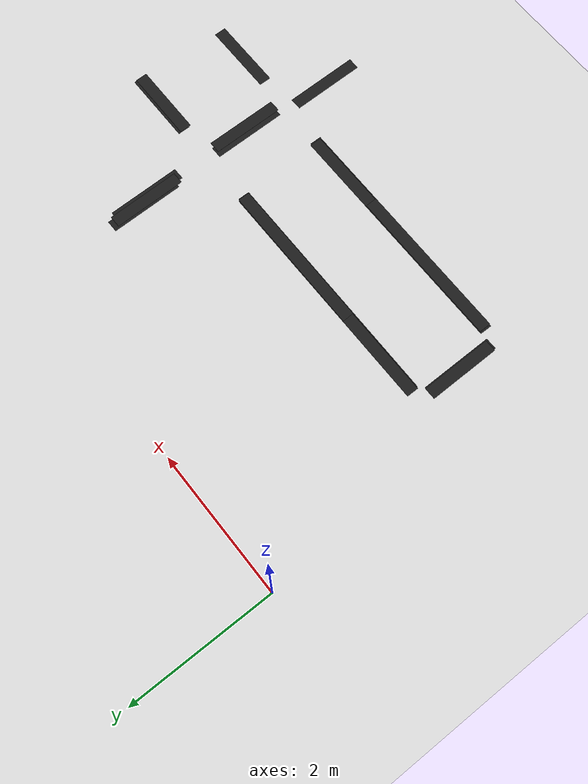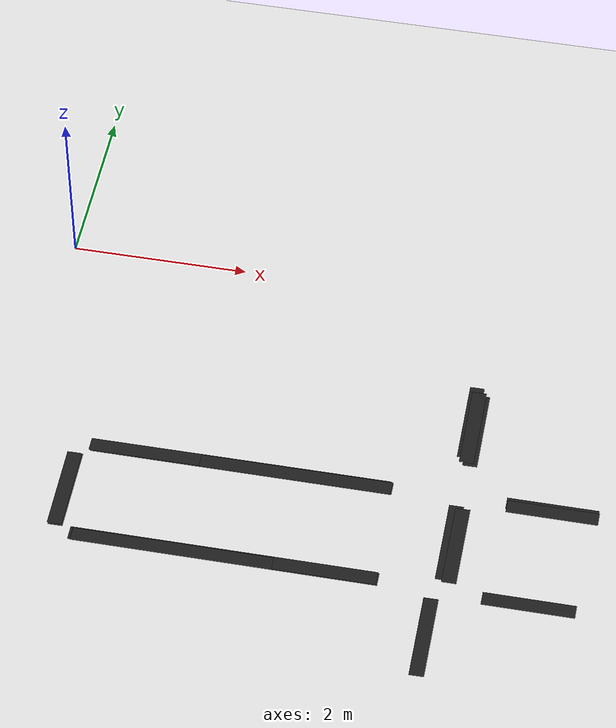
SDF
<sdf version="1.7">
 <world name="default">
  <model name="ground_plane">
   <static>1</static>
   <link name="link">
    <collision name="collision">
     <geometry><plane><normal>0 0 1</normal><size>100 100</size></plane></geometry>
     <surface>
      <contact><collide_bitmask>65535</collide_bitmask></contact>
      <friction><ode><mu>100</mu><mu2>50</mu2></ode></friction>
     </surface>
    </collision>
    <visual name="visual">
     <cast_shadows>0</cast_shadows>
     <geometry><plane><normal>0 0 1</normal><size>100 100</size></plane></geometry>
     <material>
      <script><uri>file://media/materials/scripts/gazebo.material</uri><name>Gazebo/White</name></script>
     </material>
    </visual>
   </link>
  </model>
  <model name="unit_box_clone_0_clone_clone_0_clone_clone">
   <link name="link">
    <inertial>
     <mass>1</mass>
     <inertia>
      <ixx>0.166667</ixx>
      <ixy>0</ixy>
      <ixz>0</ixz>
      <iyy>0.166667</iyy>
      <iyz>0</iyz>
      <izz>0.166667</izz>
     </inertia>
    </inertial>
    <visual name="visual">
     <geometry><box><size>0.983697 0.160776 0.000937</size></box></geometry>
     <material>
      <script><name>Gazebo/Black</name><uri>file://media/materials/scripts/gazebo.material</uri></script>
      <shader type="pixel"><normal_map>__default__</normal_map></shader>
      <ambient>0 0 0 1</ambient>
      <diffuse>0 0 0 1</diffuse>
      <specular>0.1 0.1 0.1 1</specular>
      <emissive>0 0 0 1</emissive>
     </material>
    </visual>
    <collision name="collision">
     <geometry><box><size>0.983697 0.160776 0.000937</size></box></geometry>
     <surface>
      <friction>
       <ode><mu>1</mu><mu2>1</mu2><fdir1>0 0 0</fdir1><slip1>0</slip1><slip2>0</slip2></ode>
       <torsional>
        <coefficient>1</coefficient>
        <patch_radius>0</patch_radius>
        <surface_radius>0</surface_radius>
        <use_patch_radius>1</use_patch_radius>
        <ode><slip>0</slip></ode>
       </torsional>
      </friction>
      <bounce><restitution_coefficient>0</restitution_coefficient><threshold>1e+06</threshold></bounce>
      <contact>
       <collide_without_contact>0</collide_without_contact>
       <collide_without_contact_bitmask>1</collide_without_contact_bitmask>
       <collide_bitmask>1</collide_bitmask>
       <ode>
        <soft_cfm>0</soft_cfm>
        <soft_erp>0.2</soft_erp>
        <kp>1e+13</kp>
        <kd>1</kd>
        <max_vel>0.01</max_vel>
        <min_depth>0</min_depth>
       </ode>
       <bullet>
        <split_impulse>1</split_impulse>
        <split_impulse_penetration_threshold>-0.01</split_impulse_penetration_threshold>
        <soft_cfm>0</soft_cfm>
        <soft_erp>0.2</soft_erp>
        <kp>1e+13</kp>
        <kd>1</kd>
       </bullet>
      </contact>
     </surface>
    </collision>
   </link>
   <static>0</static>
   <pose>0.692916 -3.42492 0.001253 -2e-06 4.4e-05 -1.56183</pose>
  </model>
  <model name="unit_box_clone_0_clone_clone_0_clone_clone_clone">
   <link name="link">
    <inertial>
     <mass>1</mass>
     <inertia>
      <ixx>0.166667</ixx>
      <ixy>0</ixy>
      <ixz>0</ixz>
      <iyy>0.166667</iyy>
      <iyz>0</iyz>
      <izz>0.166667</izz>
     </inertia>
    </inertial>
    <visual name="visual">
     <geometry><box><size>1 0.160776 0.000937</size></box></geometry>
     <material>
      <script><name>Gazebo/Black</name><uri>file://media/materials/scripts/gazebo.material</uri></script>
      <shader type="pixel"><normal_map>__default__</normal_map></shader>
      <ambient>0 0 0 1</ambient>
      <diffuse>0 0 0 1</diffuse>
      <specular>0.1 0.1 0.1 1</specular>
      <emissive>0 0 0 1</emissive>
     </material>
    </visual>
    <collision name="collision">
     <geometry><box><size>1 0.160776 0.000937</size></box></geometry>
     <surface>
      <friction>
       <ode><mu>1</mu><mu2>1</mu2><fdir1>0 0 0</fdir1><slip1>0</slip1><slip2>0</slip2></ode>
       <torsional>
        <coefficient>1</coefficient>
        <patch_radius>0</patch_radius>
        <surface_radius>0</surface_radius>
        <use_patch_radius>1</use_patch_radius>
        <ode><slip>0</slip></ode>
       </torsional>
      </friction>
      <bounce><restitution_coefficient>0</restitution_coefficient><threshold>1e+06</threshold></bounce>
      <contact>
       <collide_without_contact>0</collide_without_contact>
       <collide_without_contact_bitmask>1</collide_without_contact_bitmask>
       <collide_bitmask>1</collide_bitmask>
       <ode>
        <soft_cfm>0</soft_cfm>
        <soft_erp>0.2</soft_erp>
        <kp>1e+13</kp>
        <kd>1</kd>
        <max_vel>0.01</max_vel>
        <min_depth>0</min_depth>
       </ode>
       <bullet>
        <split_impulse>1</split_impulse>
        <split_impulse_penetration_threshold>-0.01</split_impulse_penetration_threshold>
        <soft_cfm>0</soft_cfm>
        <soft_erp>0.2</soft_erp>
        <kp>1e+13</kp>
        <kd>1</kd>
       </bullet>
      </contact>
     </surface>
    </collision>
   </link>
   <static>0</static>
   <pose>4.84228 -4.65667 0.000463 -2e-06 -1.2e-05 -1.56225</pose>
  </model>
  <model name="unit_box_clone_0_clone_clone_0_clone_clone_0">
   <link name="link">
    <inertial>
     <mass>1</mass>
     <inertia>
      <ixx>0.166667</ixx>
      <ixy>0</ixy>
      <ixz>0</ixz>
      <iyy>0.166667</iyy>
      <iyz>0</iyz>
      <izz>0.166667</izz>
     </inertia>
    </inertial>
    <visual name="visual">
     <geometry><box><size>1 0.160776 0.000937</size></box></geometry>
     <material>
      <script><name>Gazebo/Black</name><uri>file://media/materials/scripts/gazebo.material</uri></script>
      <shader type="pixel"><normal_map>__default__</normal_map></shader>
      <ambient>0 0 0 1</ambient>
      <diffuse>0 0 0 1</diffuse>
      <specular>0.1 0.1 0.1 1</specular>
      <emissive>0 0 0 1</emissive>
     </material>
    </visual>
    <collision name="collision">
     <geometry><box><size>1 0.160776 0.000937</size></box></geometry>
     <surface>
      <friction>
       <ode><mu>1</mu><mu2>1</mu2><fdir1>0 0 0</fdir1><slip1>0</slip1><slip2>0</slip2></ode>
       <torsional>
        <coefficient>1</coefficient>
        <patch_radius>0</patch_radius>
        <surface_radius>0</surface_radius>
        <use_patch_radius>1</use_patch_radius>
        <ode><slip>0</slip></ode>
       </torsional>
      </friction>
      <bounce><restitution_coefficient>0</restitution_coefficient><threshold>1e+06</threshold></bounce>
      <contact>
       <collide_without_contact>0</collide_without_contact>
       <collide_without_contact_bitmask>1</collide_without_contact_bitmask>
       <collide_bitmask>1</collide_bitmask>
       <ode>
        <soft_cfm>0</soft_cfm>
        <soft_erp>0.2</soft_erp>
        <kp>1e+13</kp>
        <kd>1</kd>
        <max_vel>0.01</max_vel>
        <min_depth>0</min_depth>
       </ode>
       <bullet>
        <split_impulse>1</split_impulse>
        <split_impulse_penetration_threshold>-0.01</split_impulse_penetration_threshold>
        <soft_cfm>0</soft_cfm>
        <soft_erp>0.2</soft_erp>
        <kp>1e+13</kp>
        <kd>1</kd>
       </bullet>
      </contact>
     </surface>
    </collision>
   </link>
   <static>0</static>
   <pose>5.94059 -2.79648 0.001247 0 5.8e-05 -0.000766</pose>
  </model>
  <model name="unit_box_clone_0_clone_clone_0_clone_clone_clone_0">
   <link name="link">
    <inertial>
     <mass>1</mass>
     <inertia>
      <ixx>0.166667</ixx>
      <ixy>0</ixy>
      <ixz>0</ixz>
      <iyy>0.166667</iyy>
      <iyz>0</iyz>
      <izz>0.166667</izz>
     </inertia>
    </inertial>
    <visual name="visual">
     <geometry><box><size>1 0.160776 0.000937</size></box></geometry>
     <material>
      <script><name>Gazebo/Black</name><uri>file://media/materials/scripts/gazebo.material</uri></script>
      <shader type="pixel"><normal_map>__default__</normal_map></shader>
      <ambient>0 0 0 1</ambient>
      <diffuse>0 0 0 1</diffuse>
      <specular>0.1 0.1 0.1 1</specular>
      <emissive>0 0 0 1</emissive>
     </material>
    </visual>
    <collision name="collision">
     <geometry><box><size>1 0.160776 0.000937</size></box></geometry>
     <surface>
      <friction>
       <ode><mu>1</mu><mu2>1</mu2><fdir1>0 0 0</fdir1><slip1>0</slip1><slip2>0</slip2></ode>
       <torsional>
        <coefficient>1</coefficient>
        <patch_radius>0</patch_radius>
        <surface_radius>0</surface_radius>
        <use_patch_radius>1</use_patch_radius>
        <ode><slip>0</slip></ode>
       </torsional>
      </friction>
      <bounce><restitution_coefficient>0</restitution_coefficient><threshold>1e+06</threshold></bounce>
      <contact>
       <collide_without_contact>0</collide_without_contact>
       <collide_without_contact_bitmask>1</collide_without_contact_bitmask>
       <collide_bitmask>1</collide_bitmask>
       <ode>
        <soft_cfm>0</soft_cfm>
        <soft_erp>0.2</soft_erp>
        <kp>1e+13</kp>
        <kd>1</kd>
        <max_vel>0.01</max_vel>
        <min_depth>0</min_depth>
       </ode>
       <bullet>
        <split_impulse>1</split_impulse>
        <split_impulse_penetration_threshold>-0.01</split_impulse_penetration_threshold>
        <soft_cfm>0</soft_cfm>
        <soft_erp>0.2</soft_erp>
        <kp>1e+13</kp>
        <kd>1</kd>
       </bullet>
      </contact>
     </surface>
    </collision>
   </link>
   <static>0</static>
   <pose>4.88102 -1.72026 0.0004 -1.6e-05 3e-06 -1.56174</pose>
  </model>
  <model name="unit_box_clone_0_clone_clone_0_clone_clone_0_clone">
   <link name="link">
    <inertial>
     <mass>1</mass>
     <inertia>
      <ixx>0.166667</ixx>
      <ixy>0</ixy>
      <ixz>0</ixz>
      <iyy>0.166667</iyy>
      <iyz>0</iyz>
      <izz>0.166667</izz>
     </inertia>
    </inertial>
    <visual name="visual">
     <geometry><box><size>1 0.160776 0.000937</size></box></geometry>
     <material>
      <script><name>Gazebo/Black</name><uri>file://media/materials/scripts/gazebo.material</uri></script>
      <shader type="pixel"><normal_map>__default__</normal_map></shader>
      <ambient>0 0 0 1</ambient>
      <diffuse>0 0 0 1</diffuse>
      <specular>0.1 0.1 0.1 1</specular>
      <emissive>0 0 0 1</emissive>
     </material>
    </visual>
    <collision name="collision">
     <geometry><box><size>1 0.160776 0.000937</size></box></geometry>
     <surface>
      <friction>
       <ode><mu>1</mu><mu2>1</mu2><fdir1>0 0 0</fdir1><slip1>0</slip1><slip2>0</slip2></ode>
       <torsional>
        <coefficient>1</coefficient>
        <patch_radius>0</patch_radius>
        <surface_radius>0</surface_radius>
        <use_patch_radius>1</use_patch_radius>
        <ode><slip>0</slip></ode>
       </torsional>
      </friction>
      <bounce><restitution_coefficient>0</restitution_coefficient><threshold>1e+06</threshold></bounce>
      <contact>
       <collide_without_contact>0</collide_without_contact>
       <collide_without_contact_bitmask>1</collide_without_contact_bitmask>
       <collide_bitmask>1</collide_bitmask>
       <ode>
        <soft_cfm>0</soft_cfm>
        <soft_erp>0.2</soft_erp>
        <kp>1e+13</kp>
        <kd>1</kd>
        <max_vel>0.01</max_vel>
        <min_depth>0</min_depth>
       </ode>
       <bullet>
        <split_impulse>1</split_impulse>
        <split_impulse_penetration_threshold>-0.01</split_impulse_penetration_threshold>
        <soft_cfm>0</soft_cfm>
        <soft_erp>0.2</soft_erp>
        <kp>1e+13</kp>
        <kd>1</kd>
       </bullet>
      </contact>
     </surface>
    </collision>
   </link>
   <static>0</static>
   <pose>5.8624 -4.05427 0.000463 -2e-06 1.2e-05 0.000228</pose>
  </model>
  <model name="unit_box_clone_0_clone_clone_0_clone_clone_clone_3">
   <link name="link">
    <inertial>
     <mass>1</mass>
     <inertia>
      <ixx>0.166667</ixx>
      <ixy>0</ixy>
      <ixz>0</ixz>
      <iyy>0.166667</iyy>
      <iyz>0</iyz>
      <izz>0.166667</izz>
     </inertia>
    </inertial>
    <visual name="visual">
     <geometry><box><size>1 0.160776 0.000937</size></box></geometry>
     <material>
      <script><name>Gazebo/Black</name><uri>file://media/materials/scripts/gazebo.material</uri></script>
      <shader type="pixel"><normal_map>__default__</normal_map></shader>
      <ambient>0 0 0 1</ambient>
      <diffuse>0 0 0 1</diffuse>
      <specular>0.1 0.1 0.1 1</specular>
      <emissive>0 0 0 1</emissive>
     </material>
    </visual>
    <collision name="collision">
     <geometry><box><size>1 0.160776 0.000937</size></box></geometry>
     <surface>
      <friction>
       <ode><mu>1</mu><mu2>1</mu2><fdir1>0 0 0</fdir1><slip1>0</slip1><slip2>0</slip2></ode>
       <torsional>
        <coefficient>1</coefficient>
        <patch_radius>0</patch_radius>
        <surface_radius>0</surface_radius>
        <use_patch_radius>1</use_patch_radius>
        <ode><slip>0</slip></ode>
       </torsional>
      </friction>
      <bounce><restitution_coefficient>0</restitution_coefficient><threshold>1e+06</threshold></bounce>
      <contact>
       <collide_without_contact>0</collide_without_contact>
       <collide_without_contact_bitmask>1</collide_without_contact_bitmask>
       <collide_bitmask>1</collide_bitmask>
       <ode>
        <soft_cfm>0</soft_cfm>
        <soft_erp>0.2</soft_erp>
        <kp>1e+13</kp>
        <kd>1</kd>
        <max_vel>0.01</max_vel>
        <min_depth>0</min_depth>
       </ode>
       <bullet>
        <split_impulse>1</split_impulse>
        <split_impulse_penetration_threshold>-0.01</split_impulse_penetration_threshold>
        <soft_cfm>0</soft_cfm>
        <soft_erp>0.2</soft_erp>
        <kp>1e+13</kp>
        <kd>1</kd>
       </bullet>
      </contact>
     </surface>
    </collision>
   </link>
   <static>0</static>
   <pose>0.70732 -3.43811 0.000403 -1e-06 -0.000132 -1.56303</pose>
  </model>
  <model name="unit_box_clone_0_clone_clone_0_clone_clone_clone_2_clone_2">
   <link name="link">
    <inertial>
     <mass>1</mass>
     <inertia>
      <ixx>0.166667</ixx>
      <ixy>0</ixy>
      <ixz>0</ixz>
      <iyy>0.166667</iyy>
      <iyz>0</iyz>
      <izz>0.166667</izz>
     </inertia>
    </inertial>
    <visual name="visual">
     <geometry><box><size>1 0.160776 0.000937</size></box></geometry>
     <material>
      <script><name>Gazebo/Black</name><uri>file://media/materials/scripts/gazebo.material</uri></script>
      <shader type="pixel"><normal_map>__default__</normal_map></shader>
      <ambient>0 0 0 1</ambient>
      <diffuse>0 0 0 1</diffuse>
      <specular>0.1 0.1 0.1 1</specular>
      <emissive>0 0 0 1</emissive>
     </material>
    </visual>
    <collision name="collision">
     <geometry><box><size>1 0.160776 0.000937</size></box></geometry>
     <surface>
      <friction>
       <ode><mu>1</mu><mu2>1</mu2><fdir1>0 0 0</fdir1><slip1>0</slip1><slip2>0</slip2></ode>
       <torsional>
        <coefficient>1</coefficient>
        <patch_radius>0</patch_radius>
        <surface_radius>0</surface_radius>
        <use_patch_radius>1</use_patch_radius>
        <ode><slip>0</slip></ode>
       </torsional>
      </friction>
      <bounce><restitution_coefficient>0</restitution_coefficient><threshold>1e+06</threshold></bounce>
      <contact>
       <collide_without_contact>0</collide_without_contact>
       <collide_without_contact_bitmask>1</collide_without_contact_bitmask>
       <collide_bitmask>1</collide_bitmask>
       <ode>
        <soft_cfm>0</soft_cfm>
        <soft_erp>0.2</soft_erp>
        <kp>1e+13</kp>
        <kd>1</kd>
        <max_vel>0.01</max_vel>
        <min_depth>0</min_depth>
       </ode>
       <bullet>
        <split_impulse>1</split_impulse>
        <split_impulse_penetration_threshold>-0.01</split_impulse_penetration_threshold>
        <soft_cfm>0</soft_cfm>
        <soft_erp>0.2</soft_erp>
        <kp>1e+13</kp>
        <kd>1</kd>
       </bullet>
      </contact>
     </surface>
    </collision>
   </link>
   <static>0</static>
   <pose>4.91274 -3.3949 0.000461 -0 -1.4e-05 -1.5638</pose>
  </model>
  <model name="unit_box_clone_0_clone_clone_0_clone_clone_clone_2_clone_3">
   <link name="link">
    <inertial>
     <mass>1</mass>
     <inertia>
      <ixx>0.166667</ixx>
      <ixy>0</ixy>
      <ixz>0</ixz>
      <iyy>0.166667</iyy>
      <iyz>0</iyz>
      <izz>0.166667</izz>
     </inertia>
    </inertial>
    <visual name="visual">
     <geometry><box><size>1 0.160776 0.000937</size></box></geometry>
     <material>
      <script><name>Gazebo/Black</name><uri>file://media/materials/scripts/gazebo.material</uri></script>
      <shader type="pixel"><normal_map>__default__</normal_map></shader>
      <ambient>0 0 0 1</ambient>
      <diffuse>0 0 0 1</diffuse>
      <specular>0.1 0.1 0.1 1</specular>
      <emissive>0 0 0 1</emissive>
     </material>
    </visual>
    <collision name="collision">
     <geometry><box><size>1 0.160776 0.000937</size></box></geometry>
     <surface>
      <friction>
       <ode><mu>1</mu><mu2>1</mu2><fdir1>0 0 0</fdir1><slip1>0</slip1><slip2>0</slip2></ode>
       <torsional>
        <coefficient>1</coefficient>
        <patch_radius>0</patch_radius>
        <surface_radius>0</surface_radius>
        <use_patch_radius>1</use_patch_radius>
        <ode><slip>0</slip></ode>
       </torsional>
      </friction>
      <bounce><restitution_coefficient>0</restitution_coefficient><threshold>1e+06</threshold></bounce>
      <contact>
       <collide_without_contact>0</collide_without_contact>
       <collide_without_contact_bitmask>1</collide_without_contact_bitmask>
       <collide_bitmask>1</collide_bitmask>
       <ode>
        <soft_cfm>0</soft_cfm>
        <soft_erp>0.2</soft_erp>
        <kp>1e+13</kp>
        <kd>1</kd>
        <max_vel>0.01</max_vel>
        <min_depth>0</min_depth>
       </ode>
       <bullet>
        <split_impulse>1</split_impulse>
        <split_impulse_penetration_threshold>-0.01</split_impulse_penetration_threshold>
        <soft_cfm>0</soft_cfm>
        <soft_erp>0.2</soft_erp>
        <kp>1e+13</kp>
        <kd>1</kd>
       </bullet>
      </contact>
     </surface>
    </collision>
   </link>
   <static>0</static>
   <pose>4.98506 -3.42261 0.001395 -1.4e-05 2e-05 -1.56655</pose>
  </model>
  <model name="unit_box_clone_0_clone_clone_0_clone_clone_clone_0_clone_0">
   <link name="link">
    <inertial>
     <mass>1</mass>
     <inertia>
      <ixx>0.166667</ixx>
      <ixy>0</ixy>
      <ixz>0</ixz>
      <iyy>0.166667</iyy>
      <iyz>0</iyz>
      <izz>0.166667</izz>
     </inertia>
    </inertial>
    <visual name="visual">
     <geometry><box><size>1 0.160776 0.000937</size></box></geometry>
     <material>
      <script><name>Gazebo/Black</name><uri>file://media/materials/scripts/gazebo.material</uri></script>
      <shader type="pixel"><normal_map>__default__</normal_map></shader>
      <ambient>0 0 0 1</ambient>
      <diffuse>0 0 0 1</diffuse>
      <specular>0.1 0.1 0.1 1</specular>
      <emissive>0 0 0 1</emissive>
     </material>
    </visual>
    <collision name="collision">
     <geometry><box><size>1 0.160776 0.000937</size></box></geometry>
     <surface>
      <friction>
       <ode><mu>1</mu><mu2>1</mu2><fdir1>0 0 0</fdir1><slip1>0</slip1><slip2>0</slip2></ode>
       <torsional>
        <coefficient>1</coefficient>
        <patch_radius>0</patch_radius>
        <surface_radius>0</surface_radius>
        <use_patch_radius>1</use_patch_radius>
        <ode><slip>0</slip></ode>
       </torsional>
      </friction>
      <bounce><restitution_coefficient>0</restitution_coefficient><threshold>1e+06</threshold></bounce>
      <contact>
       <collide_without_contact>0</collide_without_contact>
       <collide_without_contact_bitmask>1</collide_without_contact_bitmask>
       <collide_bitmask>1</collide_bitmask>
       <ode>
        <soft_cfm>0</soft_cfm>
        <soft_erp>0.2</soft_erp>
        <kp>1e+13</kp>
        <kd>1</kd>
        <max_vel>0.01</max_vel>
        <min_depth>0</min_depth>
       </ode>
       <bullet>
        <split_impulse>1</split_impulse>
        <split_impulse_penetration_threshold>-0.01</split_impulse_penetration_threshold>
        <soft_cfm>0</soft_cfm>
        <soft_erp>0.2</soft_erp>
        <kp>1e+13</kp>
        <kd>1</kd>
       </bullet>
      </contact>
     </surface>
    </collision>
   </link>
   <static>0</static>
   <pose>4.91425 -1.78553 0.002257 0 2e-06 -1.56171</pose>
  </model>
  <model name="unit_box_clone_0_clone_clone_0_clone_clone_clone_0_clone_1">
   <link name="link">
    <inertial>
     <mass>1</mass>
     <inertia>
      <ixx>0.166667</ixx>
      <ixy>0</ixy>
      <ixz>0</ixz>
      <iyy>0.166667</iyy>
      <iyz>0</iyz>
      <izz>0.166667</izz>
     </inertia>
    </inertial>
    <visual name="visual">
     <geometry><box><size>1 0.160776 0.000937</size></box></geometry>
     <material>
      <script><name>Gazebo/Black</name><uri>file://media/materials/scripts/gazebo.material</uri></script>
      <shader type="pixel"><normal_map>__default__</normal_map></shader>
      <ambient>0 0 0 1</ambient>
      <diffuse>0 0 0 1</diffuse>
      <specular>0.1 0.1 0.1 1</specular>
      <emissive>0 0 0 1</emissive>
     </material>
    </visual>
    <collision name="collision">
     <geometry><box><size>1 0.160776 0.000937</size></box></geometry>
     <surface>
      <friction>
       <ode><mu>1</mu><mu2>1</mu2><fdir1>0 0 0</fdir1><slip1>0</slip1><slip2>0</slip2></ode>
       <torsional>
        <coefficient>1</coefficient>
        <patch_radius>0</patch_radius>
        <surface_radius>0</surface_radius>
        <use_patch_radius>1</use_patch_radius>
        <ode><slip>0</slip></ode>
       </torsional>
      </friction>
      <bounce><restitution_coefficient>0</restitution_coefficient><threshold>1e+06</threshold></bounce>
      <contact>
       <collide_without_contact>0</collide_without_contact>
       <collide_without_contact_bitmask>1</collide_without_contact_bitmask>
       <collide_bitmask>1</collide_bitmask>
       <ode>
        <soft_cfm>0</soft_cfm>
        <soft_erp>0.2</soft_erp>
        <kp>1e+13</kp>
        <kd>1</kd>
        <max_vel>0.01</max_vel>
        <min_depth>0</min_depth>
       </ode>
       <bullet>
        <split_impulse>1</split_impulse>
        <split_impulse_penetration_threshold>-0.01</split_impulse_penetration_threshold>
        <soft_cfm>0</soft_cfm>
        <soft_erp>0.2</soft_erp>
        <kp>1e+13</kp>
        <kd>1</kd>
       </bullet>
      </contact>
     </surface>
    </collision>
   </link>
   <static>0</static>
   <pose>4.95851 -1.82896 0.001319 -1.3e-05 2e-06 -1.5622</pose>
  </model>
  <model name="unit_box_clone_0_clone_clone_0_clone_clone_0_clone_1">
   <link name="link">
    <inertial>
     <mass>1</mass>
     <inertia>
      <ixx>0.166667</ixx>
      <ixy>0</ixy>
      <ixz>0</ixz>
      <iyy>0.166667</iyy>
      <iyz>0</iyz>
      <izz>0.166667</izz>
     </inertia>
    </inertial>
    <visual name="visual">
     <geometry><box><size>1 0.160776 0.000937</size></box></geometry>
     <material>
      <script><name>Gazebo/Black</name><uri>file://media/materials/scripts/gazebo.material</uri></script>
      <shader type="pixel"><normal_map>__default__</normal_map></shader>
      <ambient>0 0 0 1</ambient>
      <diffuse>0 0 0 1</diffuse>
      <specular>0.1 0.1 0.1 1</specular>
      <emissive>0 0 0 1</emissive>
     </material>
    </visual>
    <collision name="collision">
     <geometry><box><size>1 0.160776 0.000937</size></box></geometry>
     <surface>
      <friction>
       <ode><mu>1</mu><mu2>1</mu2><fdir1>0 0 0</fdir1><slip1>0</slip1><slip2>0</slip2></ode>
       <torsional>
        <coefficient>1</coefficient>
        <patch_radius>0</patch_radius>
        <surface_radius>0</surface_radius>
        <use_patch_radius>1</use_patch_radius>
        <ode><slip>0</slip></ode>
       </torsional>
      </friction>
      <bounce><restitution_coefficient>0</restitution_coefficient><threshold>1e+06</threshold></bounce>
      <contact>
       <collide_without_contact>0</collide_without_contact>
       <collide_without_contact_bitmask>1</collide_without_contact_bitmask>
       <collide_bitmask>1</collide_bitmask>
       <ode>
        <soft_cfm>0</soft_cfm>
        <soft_erp>0.2</soft_erp>
        <kp>1e+13</kp>
        <kd>1</kd>
        <max_vel>0.01</max_vel>
        <min_depth>0</min_depth>
       </ode>
       <bullet>
        <split_impulse>1</split_impulse>
        <split_impulse_penetration_threshold>-0.01</split_impulse_penetration_threshold>
        <soft_cfm>0</soft_cfm>
        <soft_erp>0.2</soft_erp>
        <kp>1e+13</kp>
        <kd>1</kd>
       </bullet>
      </contact>
     </surface>
    </collision>
   </link>
   <static>0</static>
   <pose>5.93147 -2.76222 0.000403 0 -0.00013 0.000221</pose>
  </model>
  <model name="unit_box_clone_0_clone_clone_0_clone_clone_4">
   <link name="link">
    <inertial>
     <mass>1</mass>
     <inertia>
      <ixx>0.166667</ixx>
      <ixy>0</ixy>
      <ixz>0</ixz>
      <iyy>0.166667</iyy>
      <iyz>0</iyz>
      <izz>0.166667</izz>
     </inertia>
    </inertial>
    <visual name="visual">
     <geometry><box><size>3.33465 0.160776 0.000937</size></box></geometry>
     <material>
      <script><name>Gazebo/Black</name><uri>file://media/materials/scripts/gazebo.material</uri></script>
      <shader type="pixel"><normal_map>__default__</normal_map></shader>
      <ambient>0 0 0 1</ambient>
      <diffuse>0 0 0 1</diffuse>
      <specular>0.1 0.1 0.1 1</specular>
      <emissive>0 0 0 1</emissive>
     </material>
    </visual>
    <collision name="collision">
     <geometry><box><size>3.33465 0.160776 0.000937</size></box></geometry>
     <surface>
      <friction>
       <ode><mu>1</mu><mu2>1</mu2><fdir1>0 0 0</fdir1><slip1>0</slip1><slip2>0</slip2></ode>
       <torsional>
        <coefficient>1</coefficient>
        <patch_radius>0</patch_radius>
        <surface_radius>0</surface_radius>
        <use_patch_radius>1</use_patch_radius>
        <ode><slip>0</slip></ode>
       </torsional>
      </friction>
      <bounce><restitution_coefficient>0</restitution_coefficient><threshold>1e+06</threshold></bounce>
      <contact>
       <collide_without_contact>0</collide_without_contact>
       <collide_without_contact_bitmask>1</collide_without_contact_bitmask>
       <collide_bitmask>1</collide_bitmask>
       <ode>
        <soft_cfm>0</soft_cfm>
        <soft_erp>0.2</soft_erp>
        <kp>1e+13</kp>
        <kd>1</kd>
        <max_vel>0.01</max_vel>
        <min_depth>0</min_depth>
       </ode>
       <bullet>
        <split_impulse>1</split_impulse>
        <split_impulse_penetration_threshold>-0.01</split_impulse_penetration_threshold>
        <soft_cfm>0</soft_cfm>
        <soft_erp>0.2</soft_erp>
        <kp>1e+13</kp>
        <kd>1</kd>
       </bullet>
      </contact>
     </surface>
    </collision>
   </link>
   <static>0</static>
   <pose>2.49539 -2.78118 0.000992 1.3e-05 -0.000135 0.001716</pose>
  </model>
  <model name="unit_box_clone_0_clone_clone_0_clone_clone_4_clone">
   <link name="link">
    <inertial>
     <mass>1</mass>
     <inertia>
      <ixx>0.166667</ixx>
      <ixy>0</ixy>
      <ixz>0</ixz>
      <iyy>0.166667</iyy>
      <iyz>0</iyz>
      <izz>0.166667</izz>
     </inertia>
    </inertial>
    <visual name="visual">
     <geometry><box><size>3.33465 0.160776 0.000937</size></box></geometry>
     <material>
      <script><name>Gazebo/Black</name><uri>file://media/materials/scripts/gazebo.material</uri></script>
      <shader type="pixel"><normal_map>__default__</normal_map></shader>
      <ambient>0 0 0 1</ambient>
      <diffuse>0 0 0 1</diffuse>
      <specular>0.1 0.1 0.1 1</specular>
      <emissive>0 0 0 1</emissive>
     </material>
    </visual>
    <collision name="collision">
     <geometry><box><size>3.33465 0.160776 0.000937</size></box></geometry>
     <surface>
      <friction>
       <ode><mu>1</mu><mu2>1</mu2><fdir1>0 0 0</fdir1><slip1>0</slip1><slip2>0</slip2></ode>
       <torsional>
        <coefficient>1</coefficient>
        <patch_radius>0</patch_radius>
        <surface_radius>0</surface_radius>
        <use_patch_radius>1</use_patch_radius>
        <ode><slip>0</slip></ode>
       </torsional>
      </friction>
      <bounce><restitution_coefficient>0</restitution_coefficient><threshold>1e+06</threshold></bounce>
      <contact>
       <collide_without_contact>0</collide_without_contact>
       <collide_without_contact_bitmask>1</collide_without_contact_bitmask>
       <collide_bitmask>1</collide_bitmask>
       <ode>
        <soft_cfm>0</soft_cfm>
        <soft_erp>0.2</soft_erp>
        <kp>1e+13</kp>
        <kd>1</kd>
        <max_vel>0.01</max_vel>
        <min_depth>0</min_depth>
       </ode>
       <bullet>
        <split_impulse>1</split_impulse>
        <split_impulse_penetration_threshold>-0.01</split_impulse_penetration_threshold>
        <soft_cfm>0</soft_cfm>
        <soft_erp>0.2</soft_erp>
        <kp>1e+13</kp>
        <kd>1</kd>
       </bullet>
      </contact>
     </surface>
    </collision>
   </link>
   <static>0</static>
   <pose>2.57944 -4.01782 0.001016 -6e-06 4.9e-05 0.000267</pose>
  </model>
  <model name="unit_box_clone_0_clone_clone_0_clone_clone_4_clone_0">
   <link name="link">
    <inertial>
     <mass>1</mass>
     <inertia>
      <ixx>0.166667</ixx>
      <ixy>0</ixy>
      <ixz>0</ixz>
      <iyy>0.166667</iyy>
      <iyz>0</iyz>
      <izz>0.166667</izz>
     </inertia>
    </inertial>
    <visual name="visual">
     <geometry><box><size>3.33465 0.160776 0.000937</size></box></geometry>
     <material>
      <script><name>Gazebo/Black</name><uri>file://media/materials/scripts/gazebo.material</uri></script>
      <shader type="pixel"><normal_map>__default__</normal_map></shader>
      <ambient>0 0 0 1</ambient>
      <diffuse>0 0 0 1</diffuse>
      <specular>0.1 0.1 0.1 1</specular>
      <emissive>0 0 0 1</emissive>
     </material>
    </visual>
    <collision name="collision">
     <geometry><box><size>3.33465 0.160776 0.000937</size></box></geometry>
     <surface>
      <friction>
       <ode><mu>1</mu><mu2>1</mu2><fdir1>0 0 0</fdir1><slip1>0</slip1><slip2>0</slip2></ode>
       <torsional>
        <coefficient>1</coefficient>
        <patch_radius>0</patch_radius>
        <surface_radius>0</surface_radius>
        <use_patch_radius>1</use_patch_radius>
        <ode><slip>0</slip></ode>
       </torsional>
      </friction>
      <bounce><restitution_coefficient>0</restitution_coefficient><threshold>1e+06</threshold></bounce>
      <contact>
       <collide_without_contact>0</collide_without_contact>
       <collide_without_contact_bitmask>1</collide_without_contact_bitmask>
       <collide_bitmask>1</collide_bitmask>
       <ode>
        <soft_cfm>0</soft_cfm>
        <soft_erp>0.2</soft_erp>
        <kp>1e+13</kp>
        <kd>1</kd>
        <max_vel>0.01</max_vel>
        <min_depth>0</min_depth>
       </ode>
       <bullet>
        <split_impulse>1</split_impulse>
        <split_impulse_penetration_threshold>-0.01</split_impulse_penetration_threshold>
        <soft_cfm>0</soft_cfm>
        <soft_erp>0.2</soft_erp>
        <kp>1e+13</kp>
        <kd>1</kd>
       </bullet>
      </contact>
     </surface>
    </collision>
   </link>
   <static>0</static>
   <pose>2.55084 -4.01213 0.000314 -1.8e-05 -9.5e-05 -0.000674</pose>
  </model>
  <model name="unit_box_clone_0_clone_clone_0_clone_clone_4_clone_1">
   <link name="link">
    <inertial>
     <mass>1</mass>
     <inertia>
      <ixx>0.166667</ixx>
      <ixy>0</ixy>
      <ixz>0</ixz>
      <iyy>0.166667</iyy>
      <iyz>0</iyz>
      <izz>0.166667</izz>
     </inertia>
    </inertial>
    <visual name="visual">
     <geometry><box><size>3.33465 0.160776 0.000937</size></box></geometry>
     <material>
      <script><name>Gazebo/Black</name><uri>file://media/materials/scripts/gazebo.material</uri></script>
      <shader type="pixel"><normal_map>__default__</normal_map></shader>
      <ambient>0 0 0 1</ambient>
      <diffuse>0 0 0 1</diffuse>
      <specular>0.1 0.1 0.1 1</specular>
      <emissive>0 0 0 1</emissive>
     </material>
    </visual>
    <collision name="collision">
     <geometry><box><size>3.33465 0.160776 0.000937</size></box></geometry>
     <surface>
      <friction>
       <ode><mu>1</mu><mu2>1</mu2><fdir1>0 0 0</fdir1><slip1>0</slip1><slip2>0</slip2></ode>
       <torsional>
        <coefficient>1</coefficient>
        <patch_radius>0</patch_radius>
        <surface_radius>0</surface_radius>
        <use_patch_radius>1</use_patch_radius>
        <ode><slip>0</slip></ode>
       </torsional>
      </friction>
      <bounce><restitution_coefficient>0</restitution_coefficient><threshold>1e+06</threshold></bounce>
      <contact>
       <collide_without_contact>0</collide_without_contact>
       <collide_without_contact_bitmask>1</collide_without_contact_bitmask>
       <collide_bitmask>1</collide_bitmask>
       <ode>
        <soft_cfm>0</soft_cfm>
        <soft_erp>0.2</soft_erp>
        <kp>1e+13</kp>
        <kd>1</kd>
        <max_vel>0.01</max_vel>
        <min_depth>0</min_depth>
       </ode>
       <bullet>
        <split_impulse>1</split_impulse>
        <split_impulse_penetration_threshold>-0.01</split_impulse_penetration_threshold>
        <soft_cfm>0</soft_cfm>
        <soft_erp>0.2</soft_erp>
        <kp>1e+13</kp>
        <kd>1</kd>
       </bullet>
      </contact>
     </surface>
    </collision>
   </link>
   <static>0</static>
   <pose>2.56341 -4.00681 0.000785 0 -0.000379 0.000699</pose>
  </model>
  <model name="unit_box_clone_0_clone_clone_0_clone_clone_4_clone_2">
   <link name="link">
    <inertial>
     <mass>1</mass>
     <inertia>
      <ixx>0.166667</ixx>
      <ixy>0</ixy>
      <ixz>0</ixz>
      <iyy>0.166667</iyy>
      <iyz>0</iyz>
      <izz>0.166667</izz>
     </inertia>
    </inertial>
    <visual name="visual">
     <geometry><box><size>3.33465 0.160776 0.000937</size></box></geometry>
     <material>
      <script><name>Gazebo/Black</name><uri>file://media/materials/scripts/gazebo.material</uri></script>
      <shader type="pixel"><normal_map>__default__</normal_map></shader>
      <ambient>0 0 0 1</ambient>
      <diffuse>0 0 0 1</diffuse>
      <specular>0.1 0.1 0.1 1</specular>
      <emissive>0 0 0 1</emissive>
     </material>
    </visual>
    <collision name="collision">
     <geometry><box><size>3.33465 0.160776 0.000937</size></box></geometry>
     <surface>
      <friction>
       <ode><mu>1</mu><mu2>1</mu2><fdir1>0 0 0</fdir1><slip1>0</slip1><slip2>0</slip2></ode>
       <torsional>
        <coefficient>1</coefficient>
        <patch_radius>0</patch_radius>
        <surface_radius>0</surface_radius>
        <use_patch_radius>1</use_patch_radius>
        <ode><slip>0</slip></ode>
       </torsional>
      </friction>
      <bounce><restitution_coefficient>0</restitution_coefficient><threshold>1e+06</threshold></bounce>
      <contact>
       <collide_without_contact>0</collide_without_contact>
       <collide_without_contact_bitmask>1</collide_without_contact_bitmask>
       <collide_bitmask>1</collide_bitmask>
       <ode>
        <soft_cfm>0</soft_cfm>
        <soft_erp>0.2</soft_erp>
        <kp>1e+13</kp>
        <kd>1</kd>
        <max_vel>0.01</max_vel>
        <min_depth>0</min_depth>
       </ode>
       <bullet>
        <split_impulse>1</split_impulse>
        <split_impulse_penetration_threshold>-0.01</split_impulse_penetration_threshold>
        <soft_cfm>0</soft_cfm>
        <soft_erp>0.2</soft_erp>
        <kp>1e+13</kp>
        <kd>1</kd>
       </bullet>
      </contact>
     </surface>
    </collision>
   </link>
   <static>0</static>
   <pose>2.5115 -2.78809 0.001195 3.1e-05 -0.000582 -0.000432</pose>
  </model>
  <model name="unit_box_clone_0_clone_clone_0_clone_clone_4_clone_3">
   <link name="link">
    <inertial>
     <mass>1</mass>
     <inertia>
      <ixx>0.166667</ixx>
      <ixy>0</ixy>
      <ixz>0</ixz>
      <iyy>0.166667</iyy>
      <iyz>0</iyz>
      <izz>0.166667</izz>
     </inertia>
    </inertial>
    <visual name="visual">
     <geometry><box><size>3.33465 0.160776 0.000937</size></box></geometry>
     <material>
      <script><name>Gazebo/Black</name><uri>file://media/materials/scripts/gazebo.material</uri></script>
      <shader type="pixel"><normal_map>__default__</normal_map></shader>
      <ambient>0 0 0 1</ambient>
      <diffuse>0 0 0 1</diffuse>
      <specular>0.1 0.1 0.1 1</specular>
      <emissive>0 0 0 1</emissive>
     </material>
    </visual>
    <collision name="collision">
     <geometry><box><size>3.33465 0.160776 0.000937</size></box></geometry>
     <surface>
      <friction>
       <ode><mu>1</mu><mu2>1</mu2><fdir1>0 0 0</fdir1><slip1>0</slip1><slip2>0</slip2></ode>
       <torsional>
        <coefficient>1</coefficient>
        <patch_radius>0</patch_radius>
        <surface_radius>0</surface_radius>
        <use_patch_radius>1</use_patch_radius>
        <ode><slip>0</slip></ode>
       </torsional>
      </friction>
      <bounce><restitution_coefficient>0</restitution_coefficient><threshold>1e+06</threshold></bounce>
      <contact>
       <collide_without_contact>0</collide_without_contact>
       <collide_without_contact_bitmask>1</collide_without_contact_bitmask>
       <collide_bitmask>1</collide_bitmask>
       <ode>
        <soft_cfm>0</soft_cfm>
        <soft_erp>0.2</soft_erp>
        <kp>1e+13</kp>
        <kd>1</kd>
        <max_vel>0.01</max_vel>
        <min_depth>0</min_depth>
       </ode>
       <bullet>
        <split_impulse>1</split_impulse>
        <split_impulse_penetration_threshold>-0.01</split_impulse_penetration_threshold>
        <soft_cfm>0</soft_cfm>
        <soft_erp>0.2</soft_erp>
        <kp>1e+13</kp>
        <kd>1</kd>
       </bullet>
      </contact>
     </surface>
    </collision>
   </link>
   <static>0</static>
   <pose>2.5214 -2.79458 0.000373 5e-06 5.7e-05 0.000485</pose>
  </model>
 </world>
</sdf>
